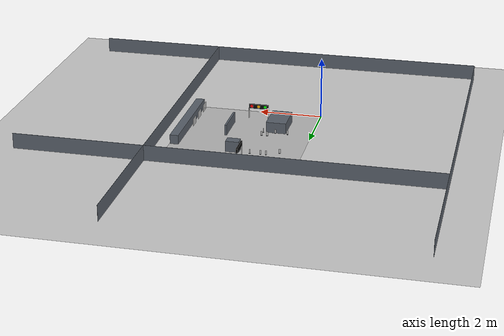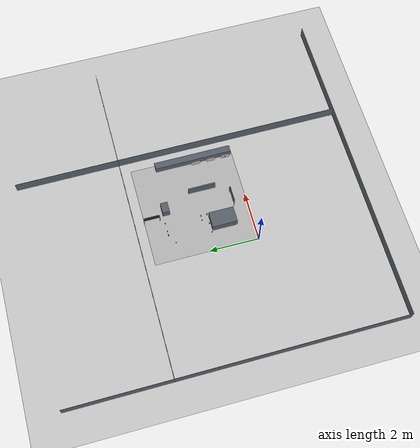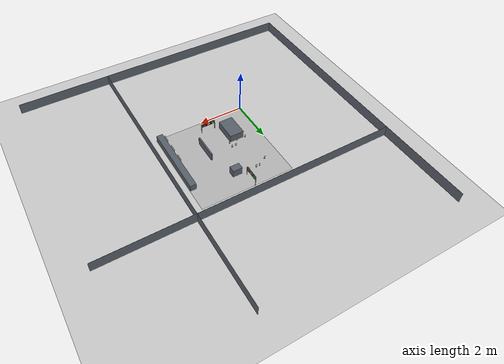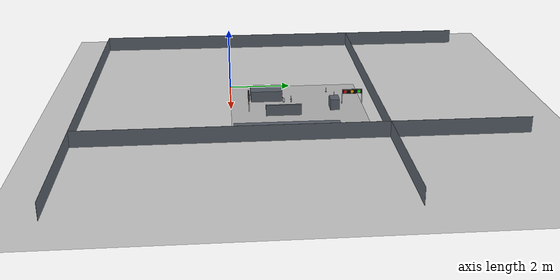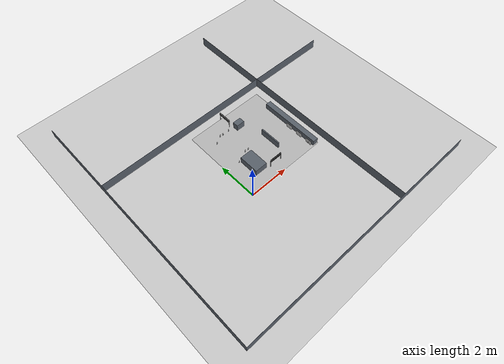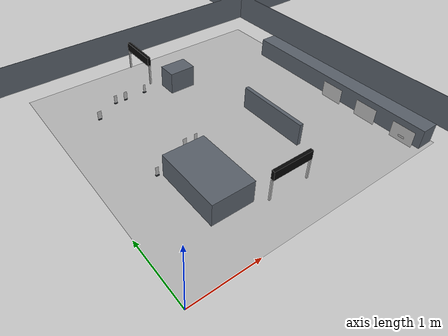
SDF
<sdf version="1.6">
 <world name="official_semifinal">
  <physics type="ode">
   <max_step_size>0.001</max_step_size>
   <real_time_update_rate>200</real_time_update_rate>
  </physics>
  <include><uri>model://sun</uri></include>
  <include><uri>model://ground_plane</uri></include>
  <include><uri>model://official_floor</uri><pose>0 0 0.002 0 0 0</pose></include>
  <model name="bld_B">
   <static>true</static>
   <pose>1.140000 1.155000 0 0 0 0</pose>
   <link name="body">
    <visual name="mass">
     <pose>0 0 0.175000 0 0 0</pose>
     <geometry><box><size>0.640000 1.010000 0.350000</size></box></geometry>
     <material><ambient>.35 .38 .42 1</ambient><diffuse>.35 .38 .42 1</diffuse></material>
    </visual>
    <collision name="mass">
     <pose>0 0 0.175000 0 0 0</pose>
     <geometry><box><size>0.640000 1.010000 0.350000</size></box></geometry>
    </collision>
   </link>
  </model>
  <model name="bld_A_north">
   <static>true</static>
   <pose>2.140000 3.265000 0 0 0 0</pose>
   <link name="body">
    <visual name="mass">
     <pose>0 0 0.175000 0 0 0</pose>
     <geometry><box><size>0.420000 0.290000 0.350000</size></box></geometry>
     <material><ambient>.35 .38 .42 1</ambient><diffuse>.35 .38 .42 1</diffuse></material>
    </visual>
    <collision name="mass">
     <pose>0 0 0.175000 0 0 0</pose>
     <geometry><box><size>0.420000 0.290000 0.350000</size></box></geometry>
    </collision>
   </link>
  </model>
  <model name="bld_A_east_thin">
   <static>true</static>
   <pose>2.650000 1.625000 0 0 0 0</pose>
   <link name="body">
    <visual name="mass">
     <pose>0 0 0.175000 0 0 0</pose>
     <geometry><box><size>0.060000 1.110000 0.350000</size></box></geometry>
     <material><ambient>.35 .38 .42 1</ambient><diffuse>.35 .38 .42 1</diffuse></material>
    </visual>
    <collision name="mass">
     <pose>0 0 0.175000 0 0 0</pose>
     <geometry><box><size>0.060000 1.110000 0.350000</size></box></geometry>
    </collision>
   </link>
  </model>
  <model name="bld_parking_wall">
   <static>true</static>
   <pose>4.045000 1.625000 0 0 0 0</pose>
   <link name="body">
    <visual name="mass">
     <pose>0 0 0.150000 0 0 0</pose>
     <geometry><box><size>0.270000 3.150000 0.300000</size></box></geometry>
     <material><ambient>.35 .38 .42 1</ambient><diffuse>.35 .38 .42 1</diffuse></material>
    </visual>
    <collision name="mass">
     <pose>0 0 0.150000 0 0 0</pose>
     <geometry><box><size>0.270000 3.150000 0.300000</size></box></geometry>
    </collision>
   </link>
  </model>
  <model name="field_wall_south">
   <static>true</static>
   <pose>2.100000 -4.597500 0 0 0 0</pose>
   <link name="body">
    <visual name="mass">
     <pose>0 0 0.250000 0 0 0</pose>
     <geometry><box><size>13.400000 0.005000 0.500000</size></box></geometry>
     <material><ambient>.35 .38 .42 1</ambient><diffuse>.35 .38 .42 1</diffuse></material>
    </visual>
    <collision name="mass">
     <pose>0 0 0.250000 0 0 0</pose>
     <geometry><box><size>13.400000 0.005000 0.500000</size></box></geometry>
    </collision>
   </link>
  </model>
  <model name="field_wall_north">
   <static>true</static>
   <pose>2.100000 4.597500 0 0 0 0</pose>
   <link name="body">
    <visual name="mass">
     <pose>0 0 0.250000 0 0 0</pose>
     <geometry><box><size>13.400000 0.005000 0.500000</size></box></geometry>
     <material><ambient>.35 .38 .42 1</ambient><diffuse>.35 .38 .42 1</diffuse></material>
    </visual>
    <collision name="mass">
     <pose>0 0 0.250000 0 0 0</pose>
     <geometry><box><size>13.400000 0.005000 0.500000</size></box></geometry>
    </collision>
   </link>
  </model>
  <model name="field_wall_west">
   <static>true</static>
   <pose>-4.597500 2.100000 0 0 0 0</pose>
   <link name="body">
    <visual name="mass">
     <pose>0 0 0.250000 0 0 0</pose>
     <geometry><box><size>0.005000 13.400000 0.500000</size></box></geometry>
     <material><ambient>.35 .38 .42 1</ambient><diffuse>.35 .38 .42 1</diffuse></material>
    </visual>
    <collision name="mass">
     <pose>0 0 0.250000 0 0 0</pose>
     <geometry><box><size>0.005000 13.400000 0.500000</size></box></geometry>
    </collision>
   </link>
  </model>
  <model name="field_wall_east">
   <static>true</static>
   <pose>4.597500 2.100000 0 0 0 0</pose>
   <link name="body">
    <visual name="mass">
     <pose>0 0 0.250000 0 0 0</pose>
     <geometry><box><size>0.005000 13.400000 0.500000</size></box></geometry>
     <material><ambient>.35 .38 .42 1</ambient><diffuse>.35 .38 .42 1</diffuse></material>
    </visual>
    <collision name="mass">
     <pose>0 0 0.250000 0 0 0</pose>
     <geometry><box><size>0.005000 13.400000 0.500000</size></box></geometry>
    </collision>
   </link>
  </model>
  <include>
   <uri>model://resident_1</uri>
   <name>person_00</name>
   <pose>0.700000 3.180000 0.003000 0 0 3.141593</pose>
  </include>
  <include>
   <uri>model://visitor_F1</uri>
   <name>person_04</name>
   <pose>1.080000 3.400000 0.003000 0 0 0.000000</pose>
  </include>
  <include>
   <uri>model://resident_10</uri>
   <name>person_05</name>
   <pose>1.250000 3.400000 0.003000 0 0 0.000000</pose>
  </include>
  <include>
   <uri>model://resident_16</uri>
   <name>person_07</name>
   <pose>1.590000 3.400000 0.003000 0 0 0.000000</pose>
  </include>
  <include>
   <uri>model://visitor_F2</uri>
   <name>person_11</name>
   <pose>1.360000 1.950000 0.003000 0 0 3.141593</pose>
  </include>
  <include>
   <uri>model://resident_14</uri>
   <name>person_12</name>
   <pose>1.540000 1.950000 0.003000 0 0 3.141593</pose>
  </include>
  <include>
   <uri>model://resident_11</uri>
   <name>person_13</name>
   <pose>0.760000 1.700000 0.003000 0 0 3.141593</pose>
  </include>
  <include>
   <uri>model://resident_12</uri>
   <name>person_14</name>
   <pose>1.150000 1.700000 0.003000 0 0 3.141593</pose>
  </include>
  <include>
   <uri>model://resident_13</uri>
   <name>person_15</name>
   <pose>1.540000 1.700000 0.003000 0 0 1.570796</pose>
  </include>
  <include>
   <uri>model://car_background</uri>
   <name>car_1</name>
   <pose>3.840000 0.300000 0.003000 0 0 -1.570796</pose>
  </include>
  <include>
   <uri>model://plate_1</uri>
   <name>plate_1</name>
   <pose>3.833000 0.300000 0.073000 0 0 -1.570796</pose>
  </include>
  <include>
   <uri>model://car_background</uri>
   <name>car_2</name>
   <pose>3.840000 0.920000 0.003000 0 0 -1.570796</pose>
  </include>
  <include>
   <uri>model://car_background</uri>
   <name>car_3</name>
   <pose>3.840000 1.540000 0.003000 0 0 -1.570796</pose>
  </include>
  <model name="light_1">
   <static>true</static>
   <pose>1.800000 3.880000 0 0 0 1.570796</pose>
   <link name="housing">
    <visual name="box">
     <pose>0 0 .41 0 0 0</pose>
     <geometry><box><size>.64 .05 .14</size></box></geometry>
     <material><ambient>.02 .02 .02 1</ambient><diffuse>.02 .02 .02 1</diffuse></material>
    </visual>
    <visual name="red">
     <pose>-0.220000 -.025 .41 1.570796 0 0</pose>
     <geometry><cylinder><radius>.052</radius><length>.012</length></cylinder></geometry>
     <material><ambient>1 0 0 1</ambient><diffuse>1 0 0 1</diffuse></material>
    </visual>
    <visual name="yellow">
     <pose>0.000000 -.025 .41 1.570796 0 0</pose>
     <geometry><cylinder><radius>.052</radius><length>.012</length></cylinder></geometry>
     <material><ambient>1 .7 0 1</ambient><diffuse>1 .7 0 1</diffuse></material>
    </visual>
    <visual name="green">
     <pose>0.220000 -.025 .41 1.570796 0 0</pose>
     <geometry><cylinder><radius>.052</radius><length>.012</length></cylinder></geometry>
     <material><ambient>0 1 0 1</ambient><diffuse>0 1 0 1</diffuse></material>
    </visual>
    <visual name="leg_-0.32">
     <pose>-0.320000 0 .17 0 0 0</pose>
     <geometry><box><size>.025 .025 .34</size></box></geometry>
    </visual>
    <collision name="leg_-0.32">
     <pose>-0.320000 0 .17 0 0 0</pose>
     <geometry><box><size>.025 .025 .34</size></box></geometry>
    </collision>
    <visual name="leg_0.32">
     <pose>0.320000 0 .17 0 0 0</pose>
     <geometry><box><size>.025 .025 .34</size></box></geometry>
    </visual>
    <collision name="leg_0.32">
     <pose>0.320000 0 .17 0 0 0</pose>
     <geometry><box><size>.025 .025 .34</size></box></geometry>
    </collision>
   </link>
   <plugin name="signal_cycle" filename="libsemifinal_signal.so">
    <offset>16.0</offset>
    <period>30.0</period>
    <red>10.0</red>
    <green>15.0</green>
   </plugin>
  </model>
  <model name="light_2">
   <static>true</static>
   <pose>1.950000 0.560000 0 0 0 3.141593</pose>
   <link name="housing">
    <visual name="box">
     <pose>0 0 .41 0 0 0</pose>
     <geometry><box><size>.64 .05 .14</size></box></geometry>
     <material><ambient>.02 .02 .02 1</ambient><diffuse>.02 .02 .02 1</diffuse></material>
    </visual>
    <visual name="red">
     <pose>-0.220000 -.025 .41 1.570796 0 0</pose>
     <geometry><cylinder><radius>.052</radius><length>.012</length></cylinder></geometry>
     <material><ambient>1 0 0 1</ambient><diffuse>1 0 0 1</diffuse></material>
    </visual>
    <visual name="yellow">
     <pose>0.000000 -.025 .41 1.570796 0 0</pose>
     <geometry><cylinder><radius>.052</radius><length>.012</length></cylinder></geometry>
     <material><ambient>1 .7 0 1</ambient><diffuse>1 .7 0 1</diffuse></material>
    </visual>
    <visual name="green">
     <pose>0.220000 -.025 .41 1.570796 0 0</pose>
     <geometry><cylinder><radius>.052</radius><length>.012</length></cylinder></geometry>
     <material><ambient>0 1 0 1</ambient><diffuse>0 1 0 1</diffuse></material>
    </visual>
    <visual name="leg_-0.32">
     <pose>-0.320000 0 .17 0 0 0</pose>
     <geometry><box><size>.025 .025 .34</size></box></geometry>
    </visual>
    <collision name="leg_-0.32">
     <pose>-0.320000 0 .17 0 0 0</pose>
     <geometry><box><size>.025 .025 .34</size></box></geometry>
    </collision>
    <visual name="leg_0.32">
     <pose>0.320000 0 .17 0 0 0</pose>
     <geometry><box><size>.025 .025 .34</size></box></geometry>
    </visual>
    <collision name="leg_0.32">
     <pose>0.320000 0 .17 0 0 0</pose>
     <geometry><box><size>.025 .025 .34</size></box></geometry>
    </collision>
   </link>
   <plugin name="signal_cycle" filename="libsemifinal_signal.so">
    <offset>7.0</offset>
    <period>30.0</period>
    <red>10.0</red>
    <green>15.0</green>
   </plugin>
  </model>
 </world>
</sdf>

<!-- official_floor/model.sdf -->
<sdf version="1.6"><model name="official_floor"><static>true</static><link name="body">
<visual name="artwork"><geometry><mesh><uri>model://official_floor/meshes/card.dae</uri></mesh></geometry><cast_shadows>false</cast_shadows></visual>
 </link></model></sdf>

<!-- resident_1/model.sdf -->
<sdf version="1.6"><model name="resident_1"><static>true</static><link name="body">
<visual name="artwork"><geometry><mesh><uri>model://resident_1/meshes/card.dae</uri></mesh></geometry><cast_shadows>false</cast_shadows></visual><collision name="card"><pose>0 0 0.075000 0 0 0</pose><geometry><box><size>0.050000 0.005000 0.150000</size></box></geometry></collision><visual name="stand_base"><pose>0 0 0.006000 0 0 0</pose><geometry><box><size>0.050000 0.030000 0.012000</size></box></geometry><material><ambient>.16 .18 .20 1</ambient><diffuse>.16 .18 .20 1</diffuse></material></visual><collision name="stand_base"><pose>0 0 0.006000 0 0 0</pose><geometry><box><size>0.050000 0.030000 0.012000</size></box></geometry></collision>
 </link></model></sdf>

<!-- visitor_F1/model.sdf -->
<sdf version="1.6"><model name="visitor_F1"><static>true</static><link name="body">
<visual name="artwork"><geometry><mesh><uri>model://visitor_F1/meshes/card.dae</uri></mesh></geometry><cast_shadows>false</cast_shadows></visual><collision name="card"><pose>0 0 0.075000 0 0 0</pose><geometry><box><size>0.050000 0.005000 0.150000</size></box></geometry></collision><visual name="stand_base"><pose>0 0 0.006000 0 0 0</pose><geometry><box><size>0.050000 0.030000 0.012000</size></box></geometry><material><ambient>.16 .18 .20 1</ambient><diffuse>.16 .18 .20 1</diffuse></material></visual><collision name="stand_base"><pose>0 0 0.006000 0 0 0</pose><geometry><box><size>0.050000 0.030000 0.012000</size></box></geometry></collision>
 </link></model></sdf>

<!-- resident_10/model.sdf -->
<sdf version="1.6"><model name="resident_10"><static>true</static><link name="body">
<visual name="artwork"><geometry><mesh><uri>model://resident_10/meshes/card.dae</uri></mesh></geometry><cast_shadows>false</cast_shadows></visual><collision name="card"><pose>0 0 0.075000 0 0 0</pose><geometry><box><size>0.050000 0.005000 0.150000</size></box></geometry></collision><visual name="stand_base"><pose>0 0 0.006000 0 0 0</pose><geometry><box><size>0.050000 0.030000 0.012000</size></box></geometry><material><ambient>.16 .18 .20 1</ambient><diffuse>.16 .18 .20 1</diffuse></material></visual><collision name="stand_base"><pose>0 0 0.006000 0 0 0</pose><geometry><box><size>0.050000 0.030000 0.012000</size></box></geometry></collision>
 </link></model></sdf>

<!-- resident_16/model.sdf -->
<sdf version="1.6"><model name="resident_16"><static>true</static><link name="body">
<visual name="artwork"><geometry><mesh><uri>model://resident_16/meshes/card.dae</uri></mesh></geometry><cast_shadows>false</cast_shadows></visual><collision name="card"><pose>0 0 0.075000 0 0 0</pose><geometry><box><size>0.050000 0.005000 0.150000</size></box></geometry></collision><visual name="stand_base"><pose>0 0 0.006000 0 0 0</pose><geometry><box><size>0.050000 0.030000 0.012000</size></box></geometry><material><ambient>.16 .18 .20 1</ambient><diffuse>.16 .18 .20 1</diffuse></material></visual><collision name="stand_base"><pose>0 0 0.006000 0 0 0</pose><geometry><box><size>0.050000 0.030000 0.012000</size></box></geometry></collision>
 </link></model></sdf>

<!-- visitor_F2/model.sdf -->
<sdf version="1.6"><model name="visitor_F2"><static>true</static><link name="body">
<visual name="artwork"><geometry><mesh><uri>model://visitor_F2/meshes/card.dae</uri></mesh></geometry><cast_shadows>false</cast_shadows></visual><collision name="card"><pose>0 0 0.075000 0 0 0</pose><geometry><box><size>0.050000 0.005000 0.150000</size></box></geometry></collision><visual name="stand_base"><pose>0 0 0.006000 0 0 0</pose><geometry><box><size>0.050000 0.030000 0.012000</size></box></geometry><material><ambient>.16 .18 .20 1</ambient><diffuse>.16 .18 .20 1</diffuse></material></visual><collision name="stand_base"><pose>0 0 0.006000 0 0 0</pose><geometry><box><size>0.050000 0.030000 0.012000</size></box></geometry></collision>
 </link></model></sdf>

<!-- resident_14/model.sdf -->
<sdf version="1.6"><model name="resident_14"><static>true</static><link name="body">
<visual name="artwork"><geometry><mesh><uri>model://resident_14/meshes/card.dae</uri></mesh></geometry><cast_shadows>false</cast_shadows></visual><collision name="card"><pose>0 0 0.075000 0 0 0</pose><geometry><box><size>0.050000 0.005000 0.150000</size></box></geometry></collision><visual name="stand_base"><pose>0 0 0.006000 0 0 0</pose><geometry><box><size>0.050000 0.030000 0.012000</size></box></geometry><material><ambient>.16 .18 .20 1</ambient><diffuse>.16 .18 .20 1</diffuse></material></visual><collision name="stand_base"><pose>0 0 0.006000 0 0 0</pose><geometry><box><size>0.050000 0.030000 0.012000</size></box></geometry></collision>
 </link></model></sdf>

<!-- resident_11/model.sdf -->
<sdf version="1.6"><model name="resident_11"><static>true</static><link name="body">
<visual name="artwork"><geometry><mesh><uri>model://resident_11/meshes/card.dae</uri></mesh></geometry><cast_shadows>false</cast_shadows></visual><collision name="card"><pose>0 0 0.075000 0 0 0</pose><geometry><box><size>0.050000 0.005000 0.150000</size></box></geometry></collision><visual name="stand_base"><pose>0 0 0.006000 0 0 0</pose><geometry><box><size>0.050000 0.030000 0.012000</size></box></geometry><material><ambient>.16 .18 .20 1</ambient><diffuse>.16 .18 .20 1</diffuse></material></visual><collision name="stand_base"><pose>0 0 0.006000 0 0 0</pose><geometry><box><size>0.050000 0.030000 0.012000</size></box></geometry></collision>
 </link></model></sdf>

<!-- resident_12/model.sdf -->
<sdf version="1.6"><model name="resident_12"><static>true</static><link name="body">
<visual name="artwork"><geometry><mesh><uri>model://resident_12/meshes/card.dae</uri></mesh></geometry><cast_shadows>false</cast_shadows></visual><collision name="card"><pose>0 0 0.075000 0 0 0</pose><geometry><box><size>0.050000 0.005000 0.150000</size></box></geometry></collision><visual name="stand_base"><pose>0 0 0.006000 0 0 0</pose><geometry><box><size>0.050000 0.030000 0.012000</size></box></geometry><material><ambient>.16 .18 .20 1</ambient><diffuse>.16 .18 .20 1</diffuse></material></visual><collision name="stand_base"><pose>0 0 0.006000 0 0 0</pose><geometry><box><size>0.050000 0.030000 0.012000</size></box></geometry></collision>
 </link></model></sdf>

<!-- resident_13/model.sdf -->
<sdf version="1.6"><model name="resident_13"><static>true</static><link name="body">
<visual name="artwork"><geometry><mesh><uri>model://resident_13/meshes/card.dae</uri></mesh></geometry><cast_shadows>false</cast_shadows></visual><collision name="card"><pose>0 0 0.075000 0 0 0</pose><geometry><box><size>0.050000 0.005000 0.150000</size></box></geometry></collision><visual name="stand_base"><pose>0 0 0.006000 0 0 0</pose><geometry><box><size>0.050000 0.030000 0.012000</size></box></geometry><material><ambient>.16 .18 .20 1</ambient><diffuse>.16 .18 .20 1</diffuse></material></visual><collision name="stand_base"><pose>0 0 0.006000 0 0 0</pose><geometry><box><size>0.050000 0.030000 0.012000</size></box></geometry></collision>
 </link></model></sdf>

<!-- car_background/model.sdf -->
<sdf version="1.6"><model name="car_background"><static>true</static><link name="body">
<visual name="artwork"><geometry><mesh><uri>model://car_background/meshes/card.dae</uri></mesh></geometry><cast_shadows>false</cast_shadows></visual><collision name="card"><pose>0 0 0.125000 0 0 0</pose><geometry><box><size>0.345000 0.005000 0.250000</size></box></geometry></collision>
 </link></model></sdf>

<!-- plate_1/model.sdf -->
<sdf version="1.6"><model name="plate_1"><static>true</static><link name="body">
<visual name="artwork"><geometry><mesh><uri>model://plate_1/meshes/card.dae</uri></mesh></geometry><cast_shadows>false</cast_shadows></visual><collision name="card"><pose>0 0 0.015000 0 0 0</pose><geometry><box><size>0.095000 0.005000 0.030000</size></box></geometry></collision>
 </link></model></sdf>
